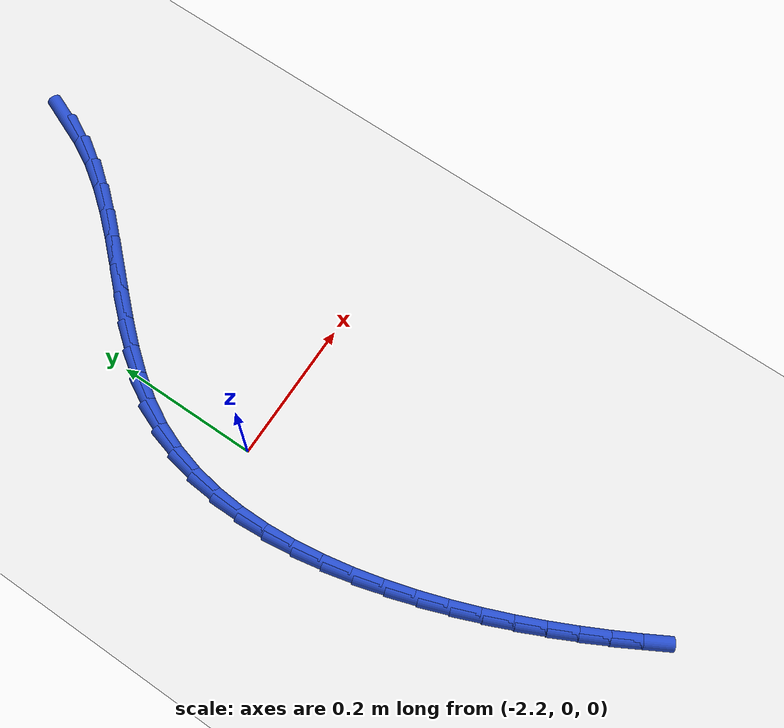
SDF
<sdf version="1.6">
 <world name="default">
  <model name="ground_plane">
   <static>1</static>
   <link name="link">
    <collision name="collision">
     <geometry><plane><normal>0 0 1</normal><size>100 100</size></plane></geometry>
     <surface><friction><ode><mu>100</mu><mu2>50</mu2></ode></friction></surface>
    </collision>
    <visual name="visual">
     <cast_shadows>0</cast_shadows>
     <geometry><plane><normal>0 0 1</normal><size>100 100</size></plane></geometry>
     <material>
      <script><uri>file://media/materials/scripts/gazebo.material</uri><name>Gazebo/WhiteGlow</name></script>
     </material>
    </visual>
   </link>
  </model>
  <model name="line">
   <link name="link_74">
    <pose>-1.9555452879726365 0.49050044753445127 0.01 0 1.57 1.1739585295162</pose>
    <collision name="collision">
     <geometry><cylinder><radius>0.01</radius><length>0.08</length></cylinder></geometry>
    </collision>
    <visual name="visual">
     <material>
      <script><name>Gazebo/Blue</name><uri>file://media/materials/scripts/gazebo.material</uri></script>
     </material>
     <geometry><cylinder><radius>0.01</radius><length>0.08</length></cylinder></geometry>
    </visual>
   </link>
   <link name="link_75">
    <pose>-1.9704007873471718 0.4550517785291789 0.01 0 1.57 1.0688780724815228</pose>
    <collision name="collision">
     <geometry><cylinder><radius>0.01</radius><length>0.08</length></cylinder></geometry>
    </collision>
    <visual name="visual">
     <material>
      <script><name>Gazebo/Blue</name><uri>file://media/materials/scripts/gazebo.material</uri></script>
     </material>
     <geometry><cylinder><radius>0.01</radius><length>0.08</length></cylinder></geometry>
    </visual>
   </link>
   <link name="link_76">
    <pose>-1.9889279495957357 0.4212921171947985 0.01 0 1.57 0.9695393036324064</pose>
    <collision name="collision">
     <geometry><cylinder><radius>0.01</radius><length>0.08</length></cylinder></geometry>
    </collision>
    <visual name="visual">
     <material>
      <script><name>Gazebo/Blue</name><uri>file://media/materials/scripts/gazebo.material</uri></script>
     </material>
     <geometry><cylinder><radius>0.01</radius><length>0.08</length></cylinder></geometry>
    </visual>
   </link>
   <link name="link_77">
    <pose>-2.011031273356153 0.3890707659218321 0.01 0 1.57 0.8945677628510066</pose>
    <collision name="collision">
     <geometry><cylinder><radius>0.01</radius><length>0.08</length></cylinder></geometry>
    </collision>
    <visual name="visual">
     <material>
      <script><name>Gazebo/Blue</name><uri>file://media/materials/scripts/gazebo.material</uri></script>
     </material>
     <geometry><cylinder><radius>0.01</radius><length>0.08</length></cylinder></geometry>
    </visual>
   </link>
   <link name="link_78">
    <pose>-2.0359253284623167 0.3580479178743113 0.01 0 1.57 0.8429478242038203</pose>
    <collision name="collision">
     <geometry><cylinder><radius>0.01</radius><length>0.08</length></cylinder></geometry>
    </collision>
    <visual name="visual">
     <material>
      <script><name>Gazebo/Blue</name><uri>file://media/materials/scripts/gazebo.material</uri></script>
     </material>
     <geometry><cylinder><radius>0.01</radius><length>0.08</length></cylinder></geometry>
    </visual>
   </link>
   <link name="link_79">
    <pose>-2.06280734294598 0.3278790128348016 0.01 0 1.57 0.8129749351180124</pose>
    <collision name="collision">
     <geometry><cylinder><radius>0.01</radius><length>0.08</length></cylinder></geometry>
    </collision>
    <visual name="visual">
     <material>
      <script><name>Gazebo/Blue</name><uri>file://media/materials/scripts/gazebo.material</uri></script>
     </material>
     <geometry><cylinder><radius>0.01</radius><length>0.08</length></cylinder></geometry>
    </visual>
   </link>
   <link name="link_80">
    <pose>-2.0908745448388983 0.2982194905858689 0.01 0 1.57 0.8034321846333383</pose>
    <collision name="collision">
     <geometry><cylinder><radius>0.01</radius><length>0.08</length></cylinder></geometry>
    </collision>
    <visual name="visual">
     <material>
      <script><name>Gazebo/Blue</name><uri>file://media/materials/scripts/gazebo.material</uri></script>
     </material>
     <geometry><cylinder><radius>0.01</radius><length>0.08</length></cylinder></geometry>
    </visual>
   </link>
   <link name="link_81">
    <pose>-2.119324162172823 0.2687247909100794 0.01 0 1.57 0.8139012059407257</pose>
    <collision name="collision">
     <geometry><cylinder><radius>0.01</radius><length>0.08</length></cylinder></geometry>
    </collision>
    <visual name="visual">
     <material>
      <script><name>Gazebo/Blue</name><uri>file://media/materials/scripts/gazebo.material</uri></script>
     </material>
     <geometry><cylinder><radius>0.01</radius><length>0.08</length></cylinder></geometry>
    </visual>
   </link>
   <link name="link_82">
    <pose>-2.1473534229795086 0.23905035358999882 0.01 0 1.57 0.8448423132789286</pose>
    <collision name="collision">
     <geometry><cylinder><radius>0.01</radius><length>0.08</length></cylinder></geometry>
    </collision>
    <visual name="visual">
     <material>
      <script><name>Gazebo/Blue</name><uri>file://media/materials/scripts/gazebo.material</uri></script>
     </material>
     <geometry><cylinder><radius>0.01</radius><length>0.08</length></cylinder></geometry>
    </visual>
   </link>
   <link name="link_83">
    <pose>-2.174159555290707 0.2088516184081927 0.01 0 1.57 0.8975063597841442</pose>
    <collision name="collision">
     <geometry><cylinder><radius>0.01</radius><length>0.08</length></cylinder></geometry>
    </collision>
    <visual name="visual">
     <material>
      <script><name>Gazebo/Blue</name><uri>file://media/materials/scripts/gazebo.material</uri></script>
     </material>
     <geometry><cylinder><radius>0.01</radius><length>0.08</length></cylinder></geometry>
    </visual>
   </link>
   <link name="link_84">
    <pose>-2.1989397871381726 0.17778402514722758 0.01 0 1.57 0.9736096798099205</pose>
    <collision name="collision">
     <geometry><cylinder><radius>0.01</radius><length>0.08</length></cylinder></geometry>
    </collision>
    <visual name="visual">
     <material>
      <script><name>Gazebo/Blue</name><uri>file://media/materials/scripts/gazebo.material</uri></script>
     </material>
     <geometry><cylinder><radius>0.01</radius><length>0.08</length></cylinder></geometry>
    </visual>
   </link>
   <link name="link_85">
    <pose>-2.220891346553659 0.14550301358966877 0.01 0 1.57 1.0745745067544135</pose>
    <collision name="collision">
     <geometry><cylinder><radius>0.01</radius><length>0.08</length></cylinder></geometry>
    </collision>
    <visual name="visual">
     <material>
      <script><name>Gazebo/Blue</name><uri>file://media/materials/scripts/gazebo.material</uri></script>
     </material>
     <geometry><cylinder><radius>0.01</radius><length>0.08</length></cylinder></geometry>
    </visual>
   </link>
   <link name="link_86">
    <pose>-2.2392118815751187 0.1116642535691274 0.01 0 1.57 1.1925212594301198</pose>
    <collision name="collision">
     <geometry><cylinder><radius>0.01</radius><length>0.08</length></cylinder></geometry>
    </collision>
    <visual name="visual">
     <material>
      <script><name>Gazebo/Blue</name><uri>file://media/materials/scripts/gazebo.material</uri></script>
     </material>
     <geometry><cylinder><radius>0.01</radius><length>0.08</length></cylinder></geometry>
    </visual>
   </link>
   <link name="link_87">
    <pose>-2.2533591671437074 0.0760658948776545 0.01 0 1.57 1.3046361906210342</pose>
    <collision name="collision">
     <geometry><cylinder><radius>0.01</radius><length>0.08</length></cylinder></geometry>
    </collision>
    <visual name="visual">
     <material>
      <script><name>Gazebo/Blue</name><uri>file://media/materials/scripts/gazebo.material</uri></script>
     </material>
     <geometry><cylinder><radius>0.01</radius><length>0.08</length></cylinder></geometry>
    </visual>
   </link>
   <link name="link_88">
    <pose>-2.263494053612155 0.03889118455863342 0.01 0 1.57 1.4060591646569658</pose>
    <collision name="collision">
     <geometry><cylinder><radius>0.01</radius><length>0.08</length></cylinder></geometry>
    </collision>
    <visual name="visual">
     <material>
      <script><name>Gazebo/Blue</name><uri>file://media/materials/scripts/gazebo.material</uri></script>
     </material>
     <geometry><cylinder><radius>0.01</radius><length>0.08</length></cylinder></geometry>
    </visual>
   </link>
   <link name="link_89">
    <pose>-2.2698950024406725 0.00038778908112169826 0.01 0 1.57 1.4965232953270189</pose>
    <collision name="collision">
     <geometry><cylinder><radius>0.01</radius><length>0.08</length></cylinder></geometry>
    </collision>
    <visual name="visual">
     <material>
      <script><name>Gazebo/Blue</name><uri>file://media/materials/scripts/gazebo.material</uri></script>
     </material>
     <geometry><cylinder><radius>0.01</radius><length>0.08</length></cylinder></geometry>
    </visual>
   </link>
   <link name="link_90">
    <pose>-2.2728404750894744 -0.039196625085824235 0.01 0 1.57 -1.5650676693623995</pose>
    <collision name="collision">
     <geometry><cylinder><radius>0.01</radius><length>0.08</length></cylinder></geometry>
    </collision>
    <visual name="visual">
     <material>
      <script><name>Gazebo/Blue</name><uri>file://media/materials/scripts/gazebo.material</uri></script>
     </material>
     <geometry><cylinder><radius>0.01</radius><length>0.08</length></cylinder></geometry>
    </visual>
   </link>
   <link name="link_91">
    <pose>-2.2726089330187706 -0.07961439147314757 0.01 0 1.57 -1.4946067320310474</pose>
    <collision name="collision">
     <geometry><cylinder><radius>0.01</radius><length>0.08</length></cylinder></geometry>
    </collision>
    <visual name="visual">
     <material>
      <script><name>Gazebo/Blue</name><uri>file://media/materials/scripts/gazebo.material</uri></script>
     </material>
     <geometry><cylinder><radius>0.01</radius><length>0.08</length></cylinder></geometry>
    </visual>
   </link>
   <link name="link_92">
    <pose>-2.2694788376887756 -0.12061784361179248 0.01 0 1.57 -1.4325929591205624</pose>
    <collision name="collision">
     <geometry><cylinder><radius>0.01</radius><length>0.08</length></cylinder></geometry>
    </collision>
    <visual name="visual">
     <material>
      <script><name>Gazebo/Blue</name><uri>file://media/materials/scripts/gazebo.material</uri></script>
     </material>
     <geometry><cylinder><radius>0.01</radius><length>0.08</length></cylinder></geometry>
    </visual>
   </link>
   <link name="link_93">
    <pose>-2.263728650559701 -0.16195931503270036 0.01 0 1.57 -1.3779198193536333</pose>
    <collision name="collision">
     <geometry><cylinder><radius>0.01</radius><length>0.08</length></cylinder></geometry>
    </collision>
    <visual name="visual">
     <material>
      <script><name>Gazebo/Blue</name><uri>file://media/materials/scripts/gazebo.material</uri></script>
     </material>
     <geometry><cylinder><radius>0.01</radius><length>0.08</length></cylinder></geometry>
    </visual>
   </link>
   <link name="link_94">
    <pose>-2.2556368330917604 -0.20339113926681532 0.01 0 1.57 -1.329552618511247</pose>
    <collision name="collision">
     <geometry><cylinder><radius>0.01</radius><length>0.08</length></cylinder></geometry>
    </collision>
    <visual name="visual">
     <material>
      <script><name>Gazebo/Blue</name><uri>file://media/materials/scripts/gazebo.material</uri></script>
     </material>
     <geometry><cylinder><radius>0.01</radius><length>0.08</length></cylinder></geometry>
    </visual>
   </link>
   <link name="link_95">
    <pose>-2.245481846745166 -0.24466564984508063 0.01 0 1.57 -1.2865644904491034</pose>
    <collision name="collision">
     <geometry><cylinder><radius>0.01</radius><length>0.08</length></cylinder></geometry>
    </collision>
    <visual name="visual">
     <material>
      <script><name>Gazebo/Blue</name><uri>file://media/materials/scripts/gazebo.material</uri></script>
     </material>
     <geometry><cylinder><radius>0.01</radius><length>0.08</length></cylinder></geometry>
    </visual>
   </link>
   <link name="link_96">
    <pose>-2.233542152980129 -0.2855351802984394 0.01 0 1.57 -1.2481439204090201</pose>
    <collision name="collision">
     <geometry><cylinder><radius>0.01</radius><length>0.08</length></cylinder></geometry>
    </collision>
    <visual name="visual">
     <material>
      <script><name>Gazebo/Blue</name><uri>file://media/materials/scripts/gazebo.material</uri></script>
     </material>
     <geometry><cylinder><radius>0.01</radius><length>0.08</length></cylinder></geometry>
    </visual>
   </link>
   <link name="link_97">
    <pose>-2.220096213256863 -0.325752064157835 0.01 0 1.57 -1.213587258322803</pose>
    <collision name="collision">
     <geometry><cylinder><radius>0.01</radius><length>0.08</length></cylinder></geometry>
    </collision>
    <visual name="visual">
     <material>
      <script><name>Gazebo/Blue</name><uri>file://media/materials/scripts/gazebo.material</uri></script>
     </material>
     <geometry><cylinder><radius>0.01</radius><length>0.08</length></cylinder></geometry>
    </visual>
   </link>
   <link name="link_98">
    <pose>-2.2054224890355805 -0.36506863495421116 0.01 0 1.57 -1.1822436087629875</pose>
    <collision name="collision">
     <geometry><cylinder><radius>0.01</radius><length>0.08</length></cylinder></geometry>
    </collision>
    <visual name="visual">
     <material>
      <script><name>Gazebo/Blue</name><uri>file://media/materials/scripts/gazebo.material</uri></script>
     </material>
     <geometry><cylinder><radius>0.01</radius><length>0.08</length></cylinder></geometry>
    </visual>
   </link>
   <link name="link_99">
    <pose>-2.189792791007369 -0.40324906692603985 0.01 0 1.57 -1.1530378851730145</pose>
    <collision name="collision">
     <geometry><cylinder><radius>0.01</radius><length>0.08</length></cylinder></geometry>
    </collision>
    <visual name="visual">
     <material>
      <script><name>Gazebo/Blue</name><uri>file://media/materials/scripts/gazebo.material</uri></script>
     </material>
     <geometry><cylinder><radius>0.01</radius><length>0.08</length></cylinder></geometry>
    </visual>
   </link>
   <link name="link_100">
    <pose>-2.1733600796673103 -0.44026912944980134 0.01 0 1.57 -1.1256110317099475</pose>
    <collision name="collision">
     <geometry><cylinder><radius>0.01</radius><length>0.08</length></cylinder></geometry>
    </collision>
    <visual name="visual">
     <material>
      <script><name>Gazebo/Blue</name><uri>file://media/materials/scripts/gazebo.material</uri></script>
     </material>
     <geometry><cylinder><radius>0.01</radius><length>0.08</length></cylinder></geometry>
    </visual>
   </link>
   <link name="link_101">
    <pose>-2.156174802637005 -0.47628710086149134 0.01 0 1.57 -1.1003345151985302</pose>
    <collision name="collision">
     <geometry><cylinder><radius>0.01</radius><length>0.08</length></cylinder></geometry>
    </collision>
    <visual name="visual">
     <material>
      <script><name>Gazebo/Blue</name><uri>file://media/materials/scripts/gazebo.material</uri></script>
     </material>
     <geometry><cylinder><radius>0.01</radius><length>0.08</length></cylinder></geometry>
    </visual>
   </link>
   <link name="link_102">
    <pose>-2.138284046647819 -0.5114672430634541 0.01 0 1.57 -1.0775587556066877</pose>
    <collision name="collision">
     <geometry><cylinder><radius>0.01</radius><length>0.08</length></cylinder></geometry>
    </collision>
    <visual name="visual">
     <material>
      <script><name>Gazebo/Blue</name><uri>file://media/materials/scripts/gazebo.material</uri></script>
     </material>
     <geometry><cylinder><radius>0.01</radius><length>0.08</length></cylinder></geometry>
    </visual>
   </link>
   <link name="link_103">
    <pose>-2.1197348984311155 -0.5459738179580349 0.01 0 1.57 -1.0575807448501204</pose>
    <collision name="collision">
     <geometry><cylinder><radius>0.01</radius><length>0.08</length></cylinder></geometry>
    </collision>
    <visual name="visual">
     <material>
      <script><name>Gazebo/Blue</name><uri>file://media/materials/scripts/gazebo.material</uri></script>
     </material>
     <geometry><cylinder><radius>0.01</radius><length>0.08</length></cylinder></geometry>
    </visual>
   </link>
  </model>
 </world>
</sdf>
